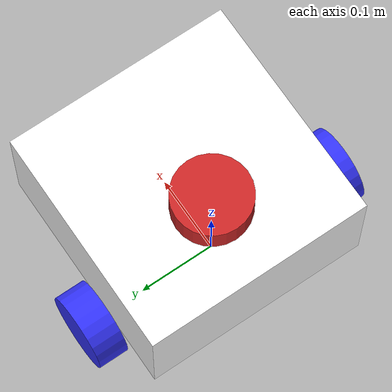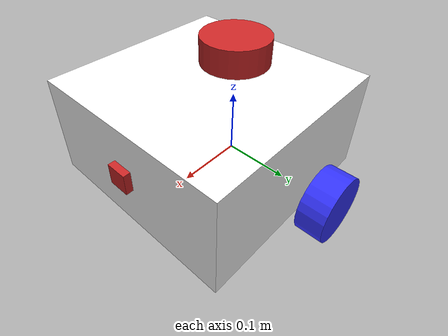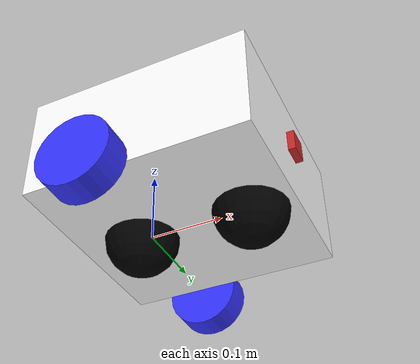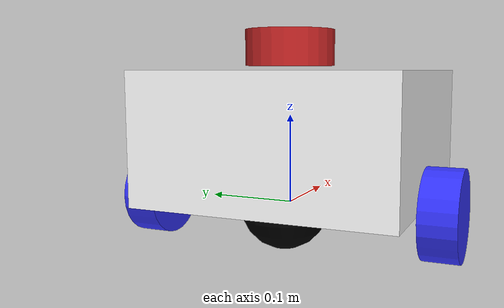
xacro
<?xml version="1.0"?>
<robot xmlns:xacro="http://www.ros.org/wiki/xacro"  name="robot">

    <xacro:include filename="robot_core.xacro"/>
    <xacro:include filename="ros2_control.xacro"/>
    <xacro:include filename="lidar.xacro"/>
    <xacro:include filename="camera.xacro"/>

</robot>

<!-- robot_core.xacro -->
<robot xmlns:xacro="http://www.ros.org/wiki/xacro"  name="robot">

    <xacro:include filename="inertial_macros.xacro"/>

    <!-- Descripción de colores en RGB-->
    <material name="white">
        <color rgba="1 1 1 1"/>
    </material>

    <material name="orange">
        <color rgba="1 0.3 0.1 1"/>
    </material>

    <material name="blue">
        <color rgba="0.2 0.2 1 1"/>
    </material>

    <material name="black">
        <color rgba="0 0 0 1"/>
    </material>

    <!-- Enlace Base-->

    <link name="base_link">

    </link>

    <!-- Enlace Base Footprint -->
    <joint name="base_footprint" type="fixed">
        <parent link="base_link"/>
        <child link="base_footprint"/>
        <origin xyz="0 0 0" rpy="0 0 0"/>
    </joint>

    <link name="base_footprint">

    </link>

    <!-- Descripción del chasis-->
    <joint name="chassis_joint" type="fixed">
        <parent link="base_link"/>
        <child link="chassis"/>
        <origin xyz="-0.1 0 0"/>
    </joint>

    <link name="chassis">
        <visual>
            <origin xyz="0.15 0 0.075" rpy="0 0 0"/>
            <geometry>
                <box size="0.3 0.3 0.15"/>
            </geometry>
            <material name="white"/>
        </visual>
        <collision>
            <origin xyz="0.15 0 0.075" rpy="0 0 0"/>
            <geometry>
                <box size="0.3 0.3 0.15"/>
            </geometry>
        </collision>
        <xacro:inertial_box mass="0.5" x="0.3" y="0.3" z="0.15">
            <origin xyz="0.15 0 0.075" rpy="0 0 0"/>
        </xacro:inertial_box>
    </link>

    <gazebo reference="chassis">
        <material>Gazebo/White</material>
    </gazebo>

    <!-- Descripción de la llanta izquierda-->

    <joint name="left_wheel_joint" type="continuous">
        <parent link="base_link"/>
        <child link="left_wheel"/>
        <origin xyz="0 0.175 0" rpy="-${pi/2} 0 0"/>
        <axis xyz="0 0 1"/>
    </joint>

    <link name="left_wheel">
        <visual>
            <geometry>
                <cylinder length="0.04" radius="0.05" />
            </geometry>
            <material name="blue"/>
        </visual>
        <collision>
            <geometry>
                <cylinder length="0.04" radius="0.05" />
            </geometry>
        </collision>
        <xacro:inertial_cylinder mass="0.1" length="0.05" radius="0.05">
            <origin xyz="0 0 0" rpy="0 0 0"/>
        </xacro:inertial_cylinder>
    </link>

    <gazebo reference="left_wheel">
        <material>Gazebo/Blue</material>
    </gazebo>

    <!-- Descripción de la llanta derecha  -->

    <joint name="right_wheel_joint" type="continuous">
        <parent link="base_link"/>
        <child link="right_wheel"/>
        <origin xyz="0 -0.175 0" rpy="${pi/2} 0 0"/>
        <axis xyz="0 0 -1"/>
    </joint>

    <link name="right_wheel">
        <visual>
            <geometry>
                <cylinder length="0.04" radius="0.05" />
            </geometry>
            <material name="blue"/>
        </visual>
        <collision>
            <geometry>
                <cylinder length="0.04" radius="0.05" />
            </geometry>
        </collision>
        <xacro:inertial_cylinder mass="0.1" length="0.05" radius="0.05">
            <origin xyz="0 0 0" rpy="0 0 0"/>
        </xacro:inertial_cylinder>
    </link>

    <gazebo reference="right_wheel">
        <material>Gazebo/Blue</material>
    </gazebo>

    <!-- Descripción de rueda giratoria-->

    <joint name="caster_wheel_joint" type="fixed">
        <parent link="chassis"/>
        <child link="caster_wheel"/>
        <origin xyz="0.24 0 0" rpy="0 0 0"/>
    </joint>

    <link name="caster_wheel">
        <visual>
            <geometry>
                <sphere radius="0.05" />
            </geometry>
            <material name="black"/>
        </visual>
        <collision>
            <geometry>
                <sphere radius="0.05" />
            </geometry>
        </collision>
        <xacro:inertial_sphere mass="0.1" radius="0.05">
            <origin xyz="0 0 0" rpy="0 0 0"/>
        </xacro:inertial_sphere>
    </link>

    <gazebo reference="caster_wheel">
        <material>Gazebo/Black</material>
        <mu1 value="0.001"/>
        <mu2 value="0.001"/>
    </gazebo>

    <!-- Descripción de rueda giratoria de atrás-->

    <joint name="back_caster_wheel_joint" type="fixed">
        <parent link="chassis"/>
        <child link="back_caster_wheel"/>
        <origin xyz="0.085 0 0" rpy="0 0 0"/>
    </joint>

    <link name="back_caster_wheel">
        <visual>
            <geometry>
                <sphere radius="0.05" />
            </geometry>
            <material name="black"/>
        </visual>
        <collision>
            <geometry>
                <sphere radius="0.05" />
            </geometry>
        </collision>
        <xacro:inertial_sphere mass="0.1" radius="0.05">
            <origin xyz="0 0 0" rpy="0 0 0"/>
        </xacro:inertial_sphere>
    </link>

    <gazebo reference="back_caster_wheel">
        <material>Gazebo/Black</material>
        <mu1 value="0.001"/>
        <mu2 value="0.001"/>
    </gazebo>

</robot>

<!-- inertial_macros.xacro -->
<robot xmlns:xacro="http://www.ros.org/wiki/xacro" >

    <!-- Calculos de inercia https://en.wikipedia.org/wiki/List_of_moments_of_inertia -->

    <xacro:macro name="inertial_sphere" params="mass radius *origin">
        <inertial>
            <xacro:insert_block name="origin"/>
            <mass value="${mass}" />
            <inertia ixx="${(2/5) * mass * (radius*radius)}" ixy="0.0" ixz="0.0"
                    iyy="${(2/5) * mass * (radius*radius)}" iyz="0.0"
                    izz="${(2/5) * mass * (radius*radius)}" />
        </inertial>
    </xacro:macro>

    <xacro:macro name="inertial_box" params="mass x y z *origin">
        <inertial>
            <xacro:insert_block name="origin"/>
            <mass value="${mass}" />
            <inertia ixx="${(1/12) * mass * (y*y+z*z)}" ixy="0.0" ixz="0.0"
                    iyy="${(1/12) * mass * (x*x+z*z)}" iyz="0.0"
                    izz="${(1/12) * mass * (x*x+y*y)}" />
        </inertial>
    </xacro:macro>

    <xacro:macro name="inertial_cylinder" params="mass length radius *origin">
        <inertial>
            <xacro:insert_block name="origin"/>
            <mass value="${mass}" />
            <inertia ixx="${(1/12) * mass * (3*radius*radius + length*length)}" ixy="0.0" ixz="0.0"
                    iyy="${(1/12) * mass * (3*radius*radius + length*length)}" iyz="0.0"
                    izz="${(1/2) * mass * (radius*radius)}" />
        </inertial>
    </xacro:macro>

</robot>

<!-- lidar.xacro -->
<robot xmlns:xacro="http://www.ros.org/wiki/xacro" >

    <!-- Descripcion del LIDAR -->

    <joint name="laser_joint" type="fixed">
        <parent link="chassis"/>
        <child link="laser_frame"/>
        <origin xyz="0.1 0 0.175" rpy="0 0 0"/>
    </joint>

    <link name="laser_frame">
        <visual>
            <geometry>
                <cylinder radius="0.05" length="0.04"/>
            </geometry>
            <material name="red"/>
        </visual>
        <collision>
            <geometry>
                <cylinder radius="0.05" length="0.04"/>
            </geometry>
        </collision>
        <xacro:inertial_cylinder mass="0.1" length="0.04" radius="0.05">
            <origin xyz="0 0 0" rpy="0 0 0"/>
        </xacro:inertial_cylinder>
    </link>

    <!-- Caracteristicas de LIDAR del robot-->

    <gazebo reference="laser_frame">
        <material>Gazebo/Red</material>

        <sensor name="laser" type="ray">
            <pose> 0 0 0 0 0 0 </pose>
            <visualize>false</visualize>
            <update_rate>10</update_rate>
            <ray>
                <scan>
                    <horizontal>
                        <samples>360</samples>
                        <min_angle>-3.14</min_angle>
                        <max_angle>3.14</max_angle>
                    </horizontal>
                </scan>
                <range>
                    <min>0.3</min>
                    <max>12</max>
                </range>
            </ray>
            <plugin name="laser_controller" filename="libgazebo_ros_ray_sensor.so">
                <ros>
                    <argument>~/out:=scan</argument>
                </ros>
                <output_type>sensor_msgs/LaserScan</output_type>
                <frame_name>laser_frame</frame_name>
            </plugin>
        </sensor>
    </gazebo>

</robot>

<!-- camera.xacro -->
<robot xmlns:xacro="http://www.ros.org/wiki/xacro" >

    <!-- Descripcion de la cámara -->

    <joint name="camera_joint" type="fixed">
        <parent link="chassis"/>
        <child link="camera_link"/>
        <origin xyz="0.305 0 0.08" rpy="0 0 0"/>
    </joint>

    <link name="camera_link">
        <visual>
            <geometry>
                <box size="0.010 0.03 0.03"/>
            </geometry>
            <material name="red"/>
        </visual>
    </link>

    <joint name="camera_optical_joint" type="fixed">
        <parent link="camera_link"/>
        <child link="camera_link_optical"/>
        <origin xyz="0 0 0" rpy="${-pi/2} 0 ${-pi/2}"/>
    </joint>

    <link name="camera_link_optical"></link>

    <!-- Caracteristicas de la cámara del robot-->

    <gazebo reference="camera_link">
        <material>Gazebo/Red</material>

        <sensor name="camera" type="camera">
            <pose> 0 0 0 0 0 0 </pose>
            <visualize>true</visualize>
            <update_rate>10</update_rate>
            <camera>
                <horizontal_fov>1.089</horizontal_fov>
                <!-- Resolución y formato de cámara-->
                <image>
                    <format>R8G8B8</format>
                    <width>640</width>
                    <height>480</height>
                </image>
                <!-- Clipping o hasta que distancia minima y máxima empieza a ver la cámara (virtual)-->
                <clip>
                    <near>0.05</near>
                    <far>8.0</far>
                </clip>
            </camera>
            <plugin name="camera_controller" filename="libgazebo_ros_camera.so">
                <frame_name>camera_link_optical</frame_name>
            </plugin>
        </sensor>
    </gazebo>

</robot>
